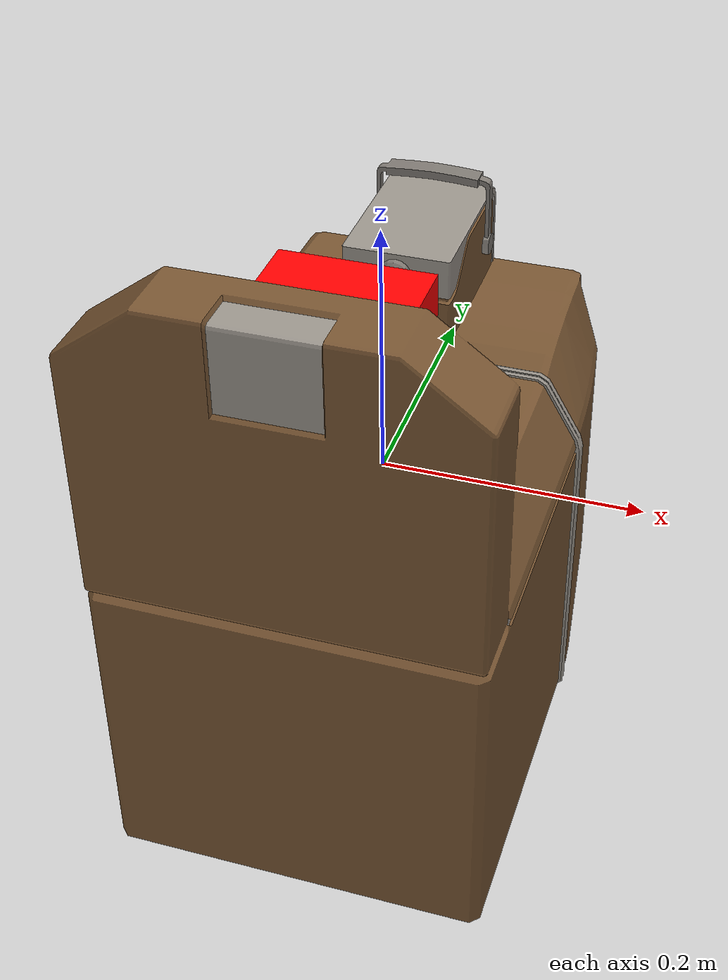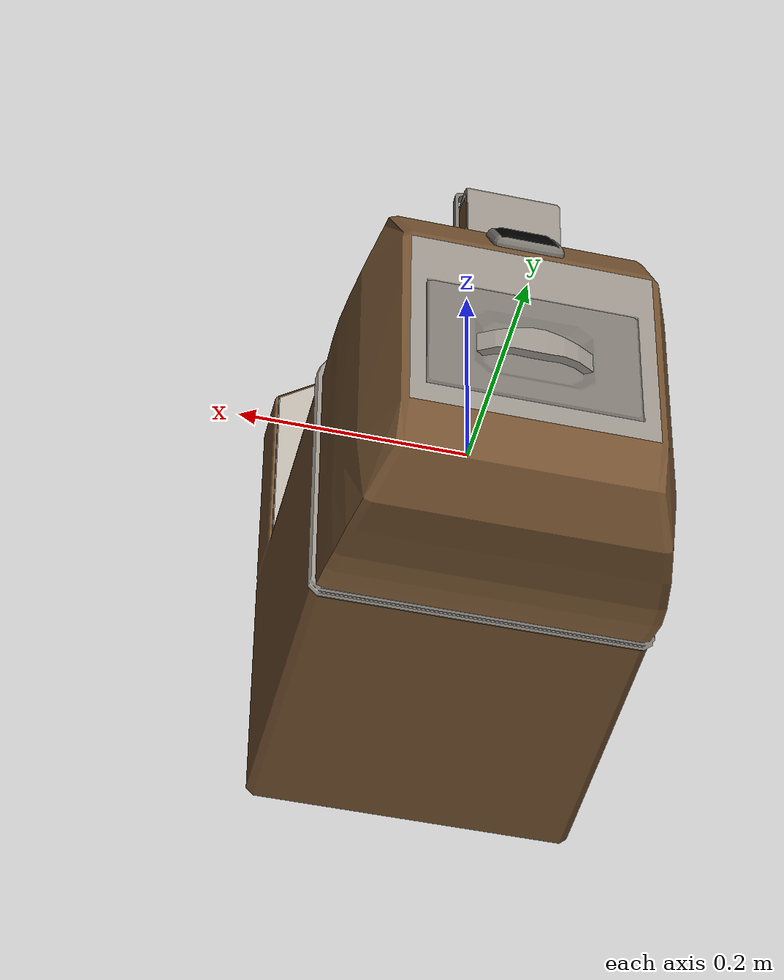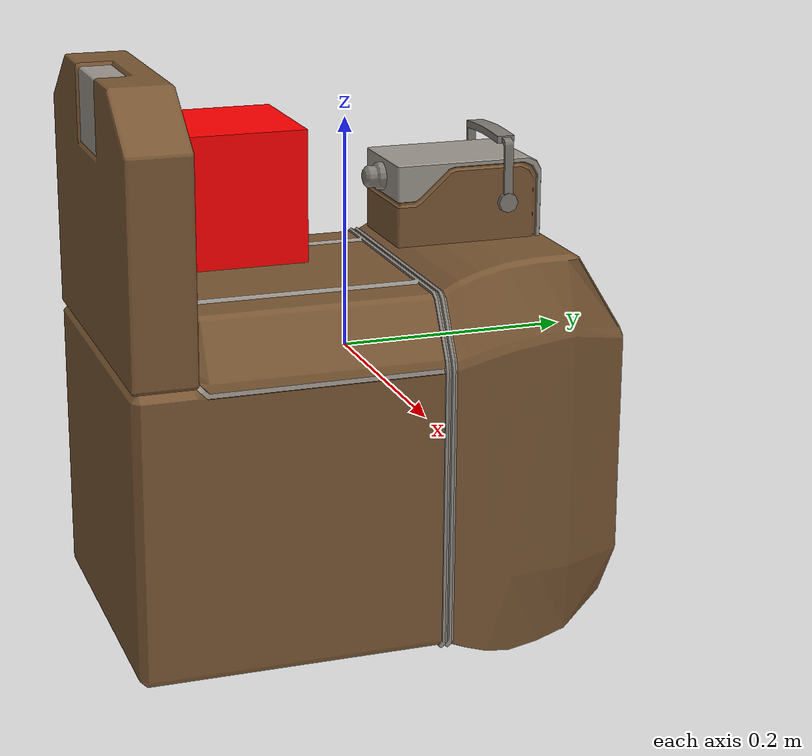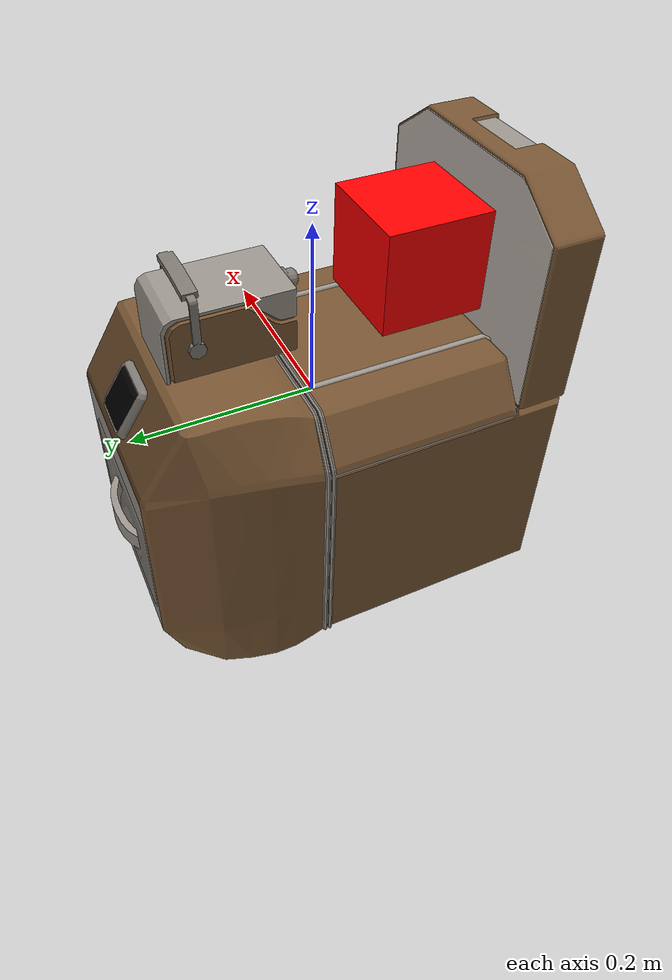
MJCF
<mujoco model="coffee_machine_7">
  <compiler autolimits="true" boundmass="0.01" angle="radian"/>
  <default>
    <default class="/">
      <default class="__VISUAL_MJT__">
        <geom contype="0" conaffinity="0" group="0"/>
      </default>
      <default class="__STRUCTURAL_MJT__">
        <geom contype="8" conaffinity="15" group="4" friction="0.90000000000000002 0.90000000000000002 0.001" solref="0.025000000000000001 1" solimp="0.998 0.998 0.001"/>
      </default>
      <default class="__DYNAMIC_MJT__">
        <geom contype="1" conaffinity="15" group="4" friction="0.90000000000000002 0.90000000000000002 0.001" solref="0.025000000000000001 1" solimp="0.998 0.998 0.001"/>
      </default>
    </default>
  </default>
  <asset>
    <material name="material_coffee_machine_backup_mat" class="/" specular="0.5" shininess="0.5" rgba="0.5 0.5 0.5 1"/>
    <material name="material_Coffee_Machine_Readout_Mat_Off" class="/" specular="0.5" shininess="0.5" rgba="0 0 0 1"/>
    <texture name="Coffee_Machine_Decal_Mat" type="2d" file="Coffee_Machine_Decal_AlbedoTransparency.png"/>
    <material name="material_Coffee_Machine_Decal_Mat" class="/" texture="Coffee_Machine_Decal_Mat" specular="0.5" shininess="0.5" rgba="1 1 1 1"/>
    <texture name="Coffee_Machine_Metal_Mat" type="2d" file="MetalBumpy_AlbedoTransparency.png"/>
    <material name="material_Coffee_Machine_Metal_Mat" class="/" texture="Coffee_Machine_Metal_Mat" specular="0.5" shininess="0.5" rgba="0.66176469999999998 0.66176469999999998 0.66176469999999998 1"/>
    <texture name="Coffee_Machine_Secondary2_Color_Mat" type="2d" file="BrushedIron_AlbedoTransparency.png"/>
    <material name="material_Coffee_Machine_Secondary2_Color_Mat" class="/" texture="Coffee_Machine_Secondary2_Color_Mat" specular="0.5" shininess="0.5" rgba="0.80882350000000003 0.80882350000000003 0.80882350000000003 1"/>
    <texture name="Coffee_Machine_Primary2_Color_Mat" type="2d" file="BumpyPlastic_Albedo.png"/>
    <material name="material_Coffee_Machine_Primary2_Color_Mat" class="/" texture="Coffee_Machine_Primary2_Color_Mat" specular="0.5" shininess="0.5" rgba="0.6323529 0.46849269999999998 0.29292820000000003 1"/>
    <mesh name="coffee_machine_7_coffee_machine_7_0" class="/" file="coffee_machine_7_coffee_machine_7/coffee_machine_7_coffee_machine_7_0.obj" scale="1 1 1"/>
    <mesh name="coffee_machine_7_coffee_machine_7_1" class="/" file="coffee_machine_7_coffee_machine_7/coffee_machine_7_coffee_machine_7_1.obj" scale="1 1 1"/>
    <mesh name="coffee_machine_7_coffee_machine_7_2" class="/" file="coffee_machine_7_coffee_machine_7/coffee_machine_7_coffee_machine_7_2.obj" scale="1 1 1"/>
    <mesh name="coffee_machine_7_coffee_machine_7_3" class="/" file="coffee_machine_7_coffee_machine_7/coffee_machine_7_coffee_machine_7_3.obj" scale="1 1 1"/>
    <mesh name="coffee_machine_7_coffee_machine_7_4" class="/" file="coffee_machine_7_coffee_machine_7/coffee_machine_7_coffee_machine_7_4.obj" scale="1 1 1"/>
    <mesh name="coffee_machine_7_coffee_machine_7_5" class="/" file="coffee_machine_7_coffee_machine_7/coffee_machine_7_coffee_machine_7_5.obj" scale="1 1 1"/>
  </asset>
  <worldbody>
    <body name="coffee_machine_7">
      <joint name="coffee_machine_7_free" class="/" type="free" pos="0 0 0" axis="0 0 1" stiffness="0" range="0 0" armature="0" damping="0.10000000000000001" frictionloss="0"/>
      <body name="coffee_machine_7_coffee_machine_7" pos="-0 -0.21998999999999999 -0.097839999999999996" quat="1 0 0 0">
        <geom name="coffee_machine_7_coffee_machine_7_0" class="__VISUAL_MJT__" type="mesh" material="material_coffee_machine_backup_mat" shellinertia="true" mesh="coffee_machine_7_coffee_machine_7_0"/>
        <geom name="coffee_machine_7_coffee_machine_7_1" class="__VISUAL_MJT__" type="mesh" material="material_Coffee_Machine_Readout_Mat_Off" shellinertia="false" mesh="coffee_machine_7_coffee_machine_7_1"/>
        <geom name="coffee_machine_7_coffee_machine_7_2" class="__VISUAL_MJT__" type="mesh" material="material_Coffee_Machine_Decal_Mat" shellinertia="false" mesh="coffee_machine_7_coffee_machine_7_2"/>
        <geom name="coffee_machine_7_coffee_machine_7_3" class="__VISUAL_MJT__" type="mesh" material="material_Coffee_Machine_Metal_Mat" shellinertia="false" mesh="coffee_machine_7_coffee_machine_7_3"/>
        <geom name="coffee_machine_7_coffee_machine_7_4" class="__VISUAL_MJT__" type="mesh" material="material_Coffee_Machine_Secondary2_Color_Mat" shellinertia="false" mesh="coffee_machine_7_coffee_machine_7_4"/>
        <geom name="coffee_machine_7_coffee_machine_7_5" class="__VISUAL_MJT__" type="mesh" material="material_Coffee_Machine_Primary2_Color_Mat" shellinertia="false" mesh="coffee_machine_7_coffee_machine_7_5"/>
        <site name="coffee_machine_7_Receptacle_0" class="/" type="box" rgba="1 0 0 1" size="0.055642168968915939 0.055984437465667725 0.055626831948757172" pos="-0 0.11398443579673767 0.2460000067949295" quat="1 0 0 0"/>
        <geom name="coffee_machine_7_PrimitiveCollider_0" class="__DYNAMIC_MJT__" type="box" size="0.14292886853218079 0.2199859619140625 0.16372466087341309" rgba="0 1 0 1" pos="-0 0.2199859619140625 0.0097813606262207031" quat="1 0 0 0"/>
        <geom name="coffee_machine_7_PrimitiveCollider_1" class="__DYNAMIC_MJT__" type="box" size="0.14292886853218079 0.028391450643539429 0.12405097484588623" rgba="0 1 0 1" pos="-0 0.028391450643539429 0.22556698322296143" quat="1 0 0 0"/>
        <geom name="coffee_machine_7_PrimitiveCollider_2" class="__DYNAMIC_MJT__" type="box" size="0.047967121005058289 0.066339939832687378 0.089765191078186035" rgba="0 1 0 1" pos="-0 0.31856313347816467 0.19128119945526123" quat="1 0 0 0"/>
      </body>
    </body>
  </worldbody>
</mujoco>
